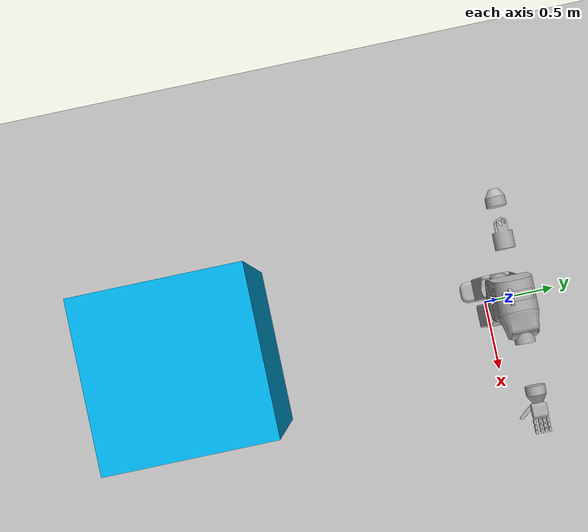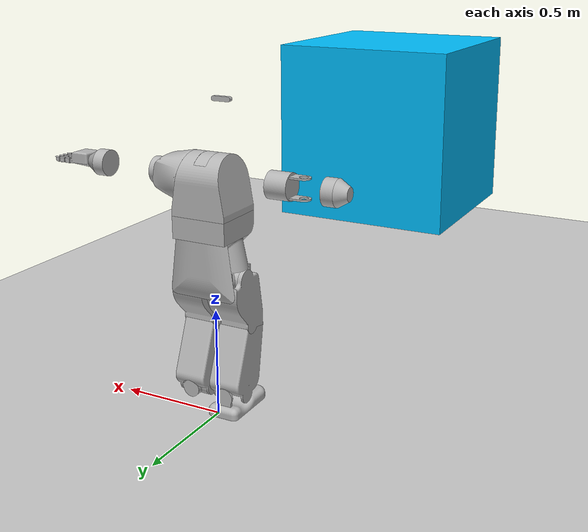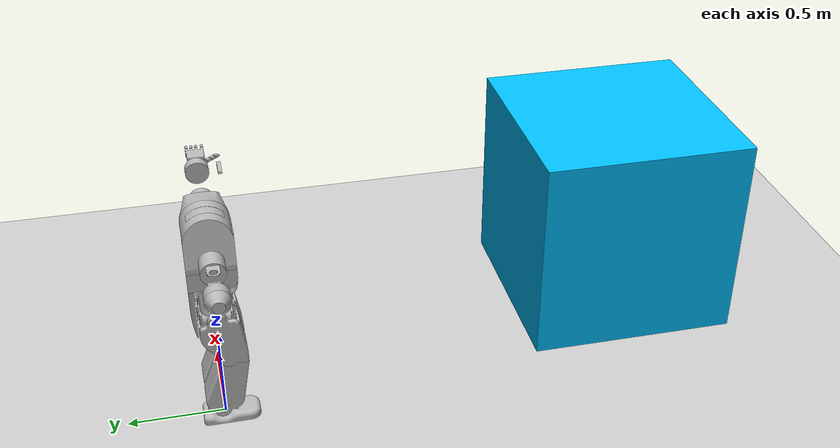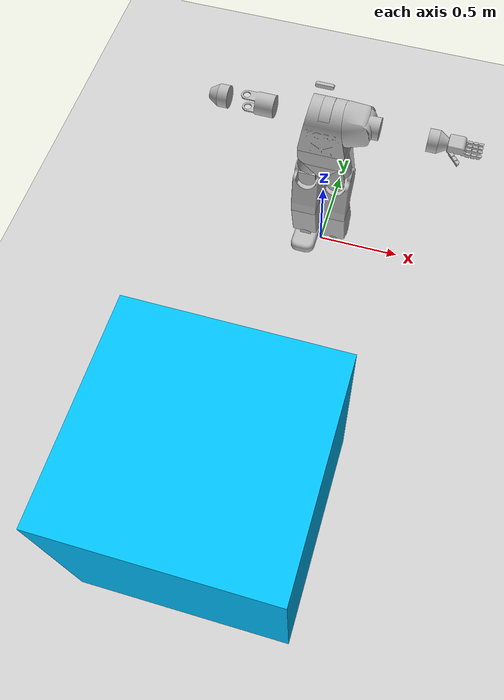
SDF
<?xml version="1.0" ?>
<sdf version="1.9">
  <!-- We use a custom world for the robot so that the camera angle is launched correctly -->

  <world name="kora_world">

    <physics name="1ms" type="ignored">
        <max_step_size>0.001</max_step_size>
        <real_time_factor>1.0</real_time_factor>
    </physics>

        <plugin
        filename="ignition-gazebo-physics-system"
        name="ignition::gazebo::systems::Physics">
    </plugin>

    <plugin
        filename="ignition-gazebo-user-commands-system"
        name="ignition::gazebo::systems::UserCommands">
    </plugin>

    <plugin
        filename="ignition-gazebo-scene-broadcaster-system"
        name="ignition::gazebo::systems::SceneBroadcaster">
    </plugin>

    <plugin
      filename="libignition-gazebo-sensors-system.so"
      name="ignition::gazebo::systems::Sensors">
      <!-- ogre2 not working with just the MESA_GL_VERSION_OVERRIDE=3.3 trick -->
      <render_engine>ogre</render_engine>
    </plugin>
  <gui>

      <fullscreen>0</fullscreen>
      <camera name='Camera'>
        <pose>10 -2 -2 0 0 0</pose>
      </camera>
    </gui>

    <light type="directional" name="sun">
        <cast_shadows>true</cast_shadows>
        <pose>0 0 10 0 0 0</pose>
        <diffuse>0.8 0.8 0.8 1</diffuse>
        <specular>0.2 0.2 0.2 1</specular>
        <attenuation>
            <range>1000</range>
            <constant>0.9</constant>
            <linear>0.01</linear>
            <quadratic>0.001</quadratic>
        </attenuation>
        <direction>-0.5 0.1 -0.9</direction>
    </light>

    <scene>
        <sky/>
    </scene>

    <model name="ground_plane">
        <static>true</static>
        <link name="link">
            <collision name="collision">
            <geometry>
                <plane>
                  <normal>0 0 1</normal>
                </plane>
            </geometry>
            </collision>
            <visual name="visual">
            <geometry>
                <plane>
                <normal>0 0 1</normal>
                <size>100 100</size>
                </plane>
            </geometry>
            <material>
                <ambient>0.8 0.8 0.8 1</ambient>
                <diffuse>0.8 0.8 0.8 1</diffuse>
                <specular>0.8 0.8 0.8 1</specular>
            </material>
            </visual>
        </link>
    </model>

    <model name="box">
      <static>true</static>
      <pose>0 -2 1 0 0 0</pose>
      <link name="box_link">
        <inertial>
          <inertia>
            <ixx>1</ixx>
            <ixy>0</ixy>
            <ixz>0</ixz>
            <iyy>1</iyy>
            <iyz>0</iyz>
            <izz>1</izz>
          </inertia>
          <mass>1.0</mass>
        </inertial>
        <collision name="box_collision">
          <geometry>
            <box>
              <size>1 1 1</size>
            </box>
          </geometry>
        </collision>

        <visual name="box_visual">
          <geometry>
            <box>
              <size>1 1 1</size>
            </box>
          </geometry>
          <material>
            <ambient>0 .75 1 1</ambient>
            <diffuse>0 .75 1 1</diffuse>
            <specular>0 .75 1 1</specular>
          </material>
        </visual>
      </link>
    </model>

    <gravity>0 0 -9.81</gravity>

    <include>
      <static>true</static>
      <name>kora</name>
      <pose>0 0 .85 0 0 0</pose>
      <uri>file:///home/sunset/sunset_ws/src/kora/src/kora_desc/kora.sdf</uri>
    </include>

  </world>
</sdf>

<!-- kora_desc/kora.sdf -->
<sdf version="1.9">

<!-- Built using SDF Generator: https://github.com/Miimiikiu/kora_tools.git -->
<!-- Editing this SDF file by hand is not recommended. -->

      <!-- ogre2 not working with just the MESA_GL_VERSION_OVERRIDE=3.3 trick -->

    <model name="kora" canonical_link='torso_lower'>
      <static>true</static>
      <plugin filename="libignition-gazebo-joint-state-publisher-system.so" name="ignition::gazebo::systems::JointStatePublisher"/>

      <link name="torso_lower">
        <pose relative_to='__model__'>0.0 0.0 0.0 0.0 0.0 0.0</pose>
        <self_collide>false</self_collide>
        <visual name='visual_torso_lower'>
          <geometry>
            <mesh>
              <uri>/home/sunset/sunset_ws/src/kora/src/kora_desc/visuals/OBJ/torso_lower.obj</uri>
              <scale>1 1 1</scale>
            </mesh>
          </geometry>
        </visual>
        <material name="None"/>
        <color rgba="${None}"/>
        <collision name='collision_torso_lower'>
          <geometry>
            <mesh>
              <uri>/home/sunset/sunset_ws/src/kora/src/kora_desc/collisions/Binary_STL/torso_lower_collision.stl</uri>
              <scale>0.001 0.001 0.001</scale>
            </mesh>
          </geometry>
        </collision>
        <inertial> <!--inertial properties of the link mass, inertia matix-->
          <mass>1.0</mass>
          <inertia>
            <ixx>0.00433778921</ixx>
            <ixy>-9.08698218e-06</ixy>
            <ixz>6.015618019999999e-06</ixz>
            <iyy>0.00327528256</iyy>
            <iyz>0.0008259445780000001</iyz>
            <izz>0.00448404768</izz>
          </inertia>
        </inertial>
      </link>

      <link name="torso_mid">
        <pose relative_to='torso_lower'>0.0 0.0 0.0 0.0 0.0 0.0</pose>
        <self_collide>false</self_collide>
        <visual name='visual_torso_mid'>
          <geometry>
            <mesh>
              <uri>/home/sunset/sunset_ws/src/kora/src/kora_desc/visuals/OBJ/torso_mid.obj</uri>
              <scale>1 1 1</scale>
            </mesh>
          </geometry>
        </visual>
        <material name="None"/>
        <color rgba="${None}"/>
        <collision name='collision_torso_mid'>
          <geometry>
            <mesh>
              <uri>/home/sunset/sunset_ws/src/kora/src/kora_desc/collisions/Binary_STL/torso_mid_collision.stl</uri>
              <scale>0.001 0.001 0.001</scale>
            </mesh>
          </geometry>
        </collision>
        <inertial> <!--inertial properties of the link mass, inertia matix-->
          <mass>1.0</mass>
          <inertia>
            <ixx>0.00349680885</ixx>
            <ixy>-7.22360891e-21</ixy>
            <ixz>-1.64695615e-19</ixz>
            <iyy>0.00401549693</iyy>
            <iyz>5.5563248699999994e-06</iyz>
            <izz>0.00647631994</izz>
          </inertia>
        </inertial>
      </link>

      <link name="torso_upper">
        <pose relative_to='torso_mid'>0.0 0.0 0.1 0.0 0.0 0.0</pose>
        <self_collide>false</self_collide>
        <visual name='visual_torso_upper'>
          <geometry>
            <mesh>
              <uri>/home/sunset/sunset_ws/src/kora/src/kora_desc/visuals/OBJ/torso_upper.obj</uri>
              <scale>1 1 1</scale>
            </mesh>
          </geometry>
        </visual>
        <material name="None"/>
        <color rgba="${None}"/>
        <collision name='collision_torso_upper'>
          <geometry>
            <mesh>
              <uri>/home/sunset/sunset_ws/src/kora/src/kora_desc/collisions/Binary_STL/torso_upper_collision.stl</uri>
              <scale>0.001 0.001 0.001</scale>
            </mesh>
          </geometry>
        </collision>
        <inertial> <!--inertial properties of the link mass, inertia matix-->
          <mass>1.0</mass>
          <inertia>
            <ixx>0.011925590199999999</ixx>
            <ixy>-1.34254727e-06</ixy>
            <ixz>3.94209561e-06</ixz>
            <iyy>0.0120148783</iyy>
            <iyz>2.94102999e-06</iyz>
            <izz>0.0116527628</izz>
          </inertia>
        </inertial>
      </link>

      <link name="backpack">
        <pose relative_to='torso_upper'>0.0 0.12 0.1 0.0 0.0 0.0</pose>
        <self_collide>false</self_collide>
        <visual name='visual_backpack'>
          <geometry>
            <mesh>
              <uri>/home/sunset/sunset_ws/src/kora/src/kora_desc/visuals/OBJ/backpack.obj</uri>
              <scale>1 1 1</scale>
            </mesh>
          </geometry>
        </visual>
        <material name="None"/>
        <color rgba="${None}"/>
        <collision name='collision_backpack'>
          <geometry>
            <mesh>
              <uri>/home/sunset/sunset_ws/src/kora/src/kora_desc/collisions/Binary_STL/backpack_collision.stl</uri>
              <scale>0.001 0.001 0.001</scale>
            </mesh>
          </geometry>
        </collision>
        <inertial> <!--inertial properties of the link mass, inertia matix-->
          <mass>1.0</mass>
          <inertia>
            <ixx>0.0222803238</ixx>
            <ixy>-1.3425329400000001e-06</ixy>
            <ixz>-8.81825398e-07</ixz>
            <iyy>0.027701203000000004</iyy>
            <iyz>0.0009489099969999999</iyz>
            <izz>0.0105777581</izz>
          </inertia>
        </inertial>
      </link>

      <link name="neck">
        <pose relative_to='torso_upper'>0.0 0.0 0.25186 0.0 0.0 0.0</pose>
        <self_collide>false</self_collide>
        <visual name='visual_neck'>
          <geometry>
            <mesh>
              <uri>/home/sunset/sunset_ws/src/kora/src/kora_desc/visuals/OBJ/neck.obj</uri>
              <scale>1 1 1</scale>
            </mesh>
          </geometry>
        </visual>
        <material name="None"/>
        <color rgba="${None}"/>
        <collision name='collision_neck'>
          <geometry>
            <mesh>
              <uri>/home/sunset/sunset_ws/src/kora/src/kora_desc/collisions/Binary_STL/neck_collision.stl</uri>
              <scale>0.001 0.001 0.001</scale>
            </mesh>
          </geometry>
        </collision>
        <inertial> <!--inertial properties of the link mass, inertia matix-->
          <mass>1.0</mass>
          <inertia>
            <ixx>6.1003576999999995e-06</ixx>
            <ixy>-4.877739510000001e-13</ixy>
            <ixz>7.82291408e-14</ixz>
            <iyy>6.10035843e-06</iyy>
            <iyz>3.85604688e-14</iyz>
            <izz>1.0733481400000001e-05</izz>
          </inertia>
        </inertial>
      </link>

      <link name="neck_connection">
        <pose relative_to='torso_upper'>0.0 0.0 0.22609 0.0 0.0 0.0</pose>
        <self_collide>false</self_collide>
        <visual name='visual_neck_connection'>
          <geometry>
            <mesh>
              <uri>/home/sunset/sunset_ws/src/kora/src/kora_desc/visuals/OBJ/neck_connection.obj</uri>
              <scale>1 1 1</scale>
            </mesh>
          </geometry>
        </visual>
        <material name="None"/>
        <color rgba="${None}"/>
        <collision name='collision_neck_connection'>
          <geometry>
            <mesh>
              <uri>/home/sunset/sunset_ws/src/kora/src/kora_desc/collisions/Binary_STL/neck_connection_collision.stl</uri>
              <scale>0.001 0.001 0.001</scale>
            </mesh>
          </geometry>
        </collision>
        <inertial> <!--inertial properties of the link mass, inertia matix-->
          <mass>1.0</mass>
          <inertia>
            <ixx>5.5356104900000006e-05</ixx>
            <ixy>1.80622642e-22</ixy>
            <ixz>-1.22648384e-21</ixz>
            <iyy>1.26475226e-05</iyy>
            <iyz>-2.4919761099999997e-22</iyz>
            <izz>6.1013188900000006e-05</izz>
          </inertia>
        </inertial>
      </link>

      <link name="head">
        <pose relative_to='neck'>0.0 0.0 0.02618000000000001 0.0 0.0 0.0</pose>
        <self_collide>false</self_collide>
        <visual name='visual_head'>
          <geometry>
            <mesh>
              <uri>/home/sunset/sunset_ws/src/kora/src/kora_desc/visuals/OBJ/head.obj</uri>
              <scale>1 1 1</scale>
            </mesh>
          </geometry>
        </visual>
        <material name="None"/>
        <color rgba="${None}"/>
        <collision name='collision_head'>
          <geometry>
            <mesh>
              <uri>/home/sunset/sunset_ws/src/kora/src/kora_desc/collisions/Binary_STL/head_collision.stl</uri>
              <scale>0.001 0.001 0.001</scale>
            </mesh>
          </geometry>
        </collision>
        <inertial> <!--inertial properties of the link mass, inertia matix-->
          <mass>1.0</mass>
          <inertia>
            <ixx>0.00875499152</ixx>
            <ixy>-1.10031686e-07</ixy>
            <ixz>1.05895885e-07</ixz>
            <iyy>0.0100606856</iyy>
            <iyz>0.000146878504</iyz>
            <izz>0.0102866286</izz>
          </inertia>
        </inertial>
      </link>

      <link name="realsense">
        <pose relative_to='head'>0.0 0.0 0.0 0.0 0.0 0.0</pose>
        <self_collide>false</self_collide>
        <visual name='visual_realsense'>
          <geometry>
            <mesh>
              <uri>/home/sunset/sunset_ws/src/kora/src/kora_desc/visuals/OBJ/realsense.obj</uri>
              <scale>1 1 1</scale>
            </mesh>
          </geometry>
        </visual>
        <material name="None"/>
        <color rgba="${None}"/>
        <collision name='collision_realsense'>
          <geometry>
            <mesh>
              <uri>/home/sunset/sunset_ws/src/kora/src/kora_desc/collisions/Binary_STL/realsense_collision.stl</uri>
              <scale>0.001 0.001 0.001</scale>
            </mesh>
          </geometry>
        </collision>
        <inertial> <!--inertial properties of the link mass, inertia matix-->
          <mass>1.0</mass>
          <inertia>
            <ixx>2.57383108e-07</ixx>
            <ixy>2.38709849e-21</ixy>
            <ixz>-2.03483329e-21</ixz>
            <iyy>2.70705869e-06</iyy>
            <iyz>-2.3293406e-19</iyz>
            <izz>2.67601348e-06</izz>
          </inertia>
        </inertial>
<!-- realsense_sensor -->

        <sensor type="camera" name="camera_sensor_color">
          <pose relative_to='realsense'>0.0 0.0 0.0 0.0 0.0 4.7124</pose>

          <!-- Set always_on only sensor, not on plugin -->
          <always_on>0</always_on>

          <!-- Set update_rate only sensor, not on plugin -->
          <update_rate>5</update_rate>

          <camera name="camera_color">

          </camera>

          <!-- Use camera, not camera_triggered -->
          <plugin name="plugin_name" filename="libgazebo_ros_camera.so">
            <ros>
              <namespace>camera_color</namespace>
              <remapping>image_raw:=img</remapping>
              <remapping>camera_info:=info</remapping>
            </ros>

            <!-- Set camera name. If empty, defaults to sensor name (i.e. "sensor_name") -->
            <camera_name>camera_color</camera_name>

            <!-- Set TF frame name. If empty, defaults to link name (i.e. "link_name") -->
            <frame_name>realsense</frame_name>

            <hack_baseline>0.07</hack_baseline>

            <!-- No need to repeat distortion parameters or to set autoDistortion -->
          </plugin>
        </sensor>

        <sensor type="depth" name="depth_sensor">

          <!-- Set always_on only sensor, not on plugin -->
          <always_on>0</always_on>

          <!-- Set update_rate only sensor, not on plugin -->
          <update_rate>1</update_rate>

          <camera name="depth_camera">

          </camera>

          <plugin name="plugin_name_depth" filename="libgazebo_ros_camera.so">
            <ros>
              <namespace>depth_camera</namespace>
              <remapping>depth_camera/image_raw:=depth_camera/custom_image</remapping>
              <remapping>depth_camera/image_depth:=depth_camera/custom_image_depth</remapping>
              <remapping>depth_camera/camera_info:=depth_camera/custom_info_raw</remapping>
              <remapping>depth_camera/camera_info_depth:=depth_camera/custom_info_depth</remapping>
              <remapping>depth_camera/points:=depth_camera/custom_points</remapping>
            </ros>

            <!-- Set camera name. If empty, defaults to sensor name (i.e. "sensor_name") -->
            <camera_name>depth_camera</camera_name>

            <!-- Set TF frame name. If empty, defaults to link name (i.e. "link_name") -->
            <frame_name>realsense</frame_name>

            <hack_baseline>0.07</hack_baseline>

            <!-- No need to repeat distortion parameters or to set autoDistortion -->

             <min_depth>0.001</min_depth>
          </plugin>
        </sensor>      </link>

      <link name="shoulder_bracket_dexter">
        <pose relative_to='torso_upper'>-0.10976 0.0 0.14829 0.0 0.165143 0.0</pose>
        <self_collide>false</self_collide>
        <visual name='visual_shoulder_bracket_dexter'>
          <geometry>
            <mesh>
              <uri>/home/sunset/sunset_ws/src/kora/src/kora_desc/visuals/OBJ/shoulder_bracket_dexter.obj</uri>
              <scale>1 1 1</scale>
            </mesh>
          </geometry>
        </visual>
        <material name="None"/>
        <color rgba="${None}"/>
        <collision name='collision_shoulder_bracket_dexter'>
          <geometry>
            <mesh>
              <uri>/home/sunset/sunset_ws/src/kora/src/kora_desc/collisions/Binary_STL/shoulder_bracket_dexter_collision.stl</uri>
              <scale>0.001 0.001 0.001</scale>
            </mesh>
          </geometry>
        </collision>
        <inertial> <!--inertial properties of the link mass, inertia matix-->
          <mass>1.0</mass>
          <inertia>
            <ixx>0.00144157404</ixx>
            <ixy>-4.4869663199999996e-08</ixy>
            <ixz>6.311151650000001e-05</ixz>
            <iyy>0.0007949240900000001</iyy>
            <iyz>-3.69869358e-08</iyz>
            <izz>0.00103050401</izz>
          </inertia>
        </inertial>
      </link>

      <link name="shoulder_link_dexter">
        <pose relative_to='shoulder_bracket_dexter'>-0.076 0.0 0.0 0.0 -0.165143 0.0</pose>
        <self_collide>false</self_collide>
        <visual name='visual_shoulder_link_dexter'>
          <geometry>
            <mesh>
              <uri>/home/sunset/sunset_ws/src/kora/src/kora_desc/visuals/OBJ/shoulder_link_dexter.obj</uri>
              <scale>1 1 1</scale>
            </mesh>
          </geometry>
        </visual>
        <material name="None"/>
        <color rgba="${None}"/>
        <collision name='collision_shoulder_link_dexter'>
          <geometry>
            <mesh>
              <uri>/home/sunset/sunset_ws/src/kora/src/kora_desc/collisions/Binary_STL/shoulder_link_dexter_collision.stl</uri>
              <scale>0.001 0.001 0.001</scale>
            </mesh>
          </geometry>
        </collision>
        <inertial> <!--inertial properties of the link mass, inertia matix-->
          <mass>1.0</mass>
          <inertia>
            <ixx>0.00089769986</ixx>
            <ixy>-5.50831472e-09</ixy>
            <ixz>5.28057508e-06</ixz>
            <iyy>0.000936444764</iyy>
            <iyz>-1.70906237e-08</iyz>
            <izz>0.00113433115</izz>
          </inertia>
        </inertial>
      </link>

      <link name="arm_upper_dexter">
        <pose relative_to='shoulder_link_dexter'>-0.102 0.0 0.0 0.0 0.0 0.0</pose>
        <self_collide>false</self_collide>
        <visual name='visual_arm_upper_dexter'>
          <geometry>
            <mesh>
              <uri>/home/sunset/sunset_ws/src/kora/src/kora_desc/visuals/OBJ/arm_upper_dexter.obj</uri>
              <scale>1 1 1</scale>
            </mesh>
          </geometry>
        </visual>
        <material name="None"/>
        <color rgba="${None}"/>
        <collision name='collision_arm_upper_dexter'>
          <geometry>
            <mesh>
              <uri>/home/sunset/sunset_ws/src/kora/src/kora_desc/collisions/Binary_STL/arm_upper_dexter_collision.stl</uri>
              <scale>0.001 0.001 0.001</scale>
            </mesh>
          </geometry>
        </collision>
        <inertial> <!--inertial properties of the link mass, inertia matix-->
          <mass>1.0</mass>
          <inertia>
            <ixx>0.000233307947</ixx>
            <ixy>-8.29006429e-21</ixy>
            <ixz>8.64003529e-20</ixz>
            <iyy>0.00027190574799999996</iyy>
            <iyz>2.06795153e-21</iyz>
            <izz>0.000250122095</izz>
          </inertia>
        </inertial>
      </link>

      <link name="forearm_dexter">
        <pose relative_to='arm_upper_dexter'>-0.155 0.0 0.0 0.0 0.0 0.0</pose>
        <self_collide>false</self_collide>
        <visual name='visual_forearm_dexter'>
          <geometry>
            <mesh>
              <uri>/home/sunset/sunset_ws/src/kora/src/kora_desc/visuals/OBJ/forearm_dexter.obj</uri>
              <scale>1 1 1</scale>
            </mesh>
          </geometry>
        </visual>
        <material name="None"/>
        <color rgba="${None}"/>
        <collision name='collision_forearm_dexter'>
          <geometry>
            <mesh>
              <uri>/home/sunset/sunset_ws/src/kora/src/kora_desc/collisions/Binary_STL/forearm_dexter_collision.stl</uri>
              <scale>0.001 0.001 0.001</scale>
            </mesh>
          </geometry>
        </collision>
        <inertial> <!--inertial properties of the link mass, inertia matix-->
          <mass>1.0</mass>
          <inertia>
            <ixx>0.000530099429</ixx>
            <ixy>9.17050572e-06</ixy>
            <ixz>-7.13339277e-09</ixz>
            <iyy>0.0009883305099999999</iyy>
            <iyz>2.2009097e-09</iyz>
            <izz>0.0009665236070000001</izz>
          </inertia>
        </inertial>
      </link>

      <link name="wrist_rot_link_dexter">
        <pose relative_to='forearm_dexter'>-0.1 0.0 0.0 0.0 0.0 0.0</pose>
        <self_collide>false</self_collide>
        <visual name='visual_wrist_rot_link_dexter'>
          <geometry>
            <mesh>
              <uri>/home/sunset/sunset_ws/src/kora/src/kora_desc/visuals/OBJ/wrist_rot_link_dexter.obj</uri>
              <scale>1 1 1</scale>
            </mesh>
          </geometry>
        </visual>
        <material name="None"/>
        <color rgba="${None}"/>
        <collision name='collision_wrist_rot_link_dexter'>
          <geometry>
            <mesh>
              <uri>/home/sunset/sunset_ws/src/kora/src/kora_desc/collisions/Binary_STL/wrist_rot_link_dexter_collision.stl</uri>
              <scale>0.001 0.001 0.001</scale>
            </mesh>
          </geometry>
        </collision>
        <inertial> <!--inertial properties of the link mass, inertia matix-->
          <mass>1.0</mass>
          <inertia>
            <ixx>0.000111629122</ixx>
            <ixy>-8.30961813e-21</ixy>
            <ixz>4.9961709e-22</ixz>
            <iyy>7.147135539999999e-05</iyy>
            <iyz>4.91138489e-22</iyz>
            <izz>7.14714437e-05</izz>
          </inertia>
        </inertial>
      </link>

      <link name="wrist_ball_dexter">
        <pose relative_to='wrist_rot_link_dexter'>-0.055 0.0 0.0 0.0 0.0 0.0</pose>
        <self_collide>false</self_collide>
        <visual name='visual_wrist_ball_dexter'>
          <geometry>
            <mesh>
              <uri>/home/sunset/sunset_ws/src/kora/src/kora_desc/visuals/OBJ/wrist_ball_dexter.obj</uri>
              <scale>1 1 1</scale>
            </mesh>
          </geometry>
        </visual>
        <material name="None"/>
        <color rgba="${None}"/>
        <collision name='collision_wrist_ball_dexter'>
          <geometry>
            <mesh>
              <uri>/home/sunset/sunset_ws/src/kora/src/kora_desc/collisions/Binary_STL/wrist_ball_dexter_collision.stl</uri>
              <scale>0.001 0.001 0.001</scale>
            </mesh>
          </geometry>
        </collision>
        <inertial> <!--inertial properties of the link mass, inertia matix-->
          <mass>1.0</mass>
          <inertia>
            <ixx>3.9329131600000004e-05</ixx>
            <ixy>1.44590198e-21</ixy>
            <ixz>6.45308082e-12</ixz>
            <iyy>2.5775806600000004e-05</iyy>
            <iyz>-4.01938635e-22</iyz>
            <izz>2.5775695700000002e-05</izz>
          </inertia>
        </inertial>
      </link>

      <link name="hand_dexter">
        <pose relative_to='wrist_ball_dexter'>-0.05 0.0 0.0 0.0 0.0 0.0</pose>
        <self_collide>false</self_collide>
        <visual name='visual_hand_dexter'>
          <geometry>
            <mesh>
              <uri>/home/sunset/sunset_ws/src/kora/src/kora_desc/visuals/OBJ/hand_dexter.obj</uri>
              <scale>1 1 1</scale>
            </mesh>
          </geometry>
        </visual>
        <material name="None"/>
        <color rgba="${None}"/>
        <collision name='collision_hand_dexter'>
          <geometry>
            <mesh>
              <uri>/home/sunset/sunset_ws/src/kora/src/kora_desc/collisions/Binary_STL/hand_dexter_collision.stl</uri>
              <scale>0.001 0.001 0.001</scale>
            </mesh>
          </geometry>
        </collision>
        <inertial> <!--inertial properties of the link mass, inertia matix-->
          <mass>1.0</mass>
          <inertia>
            <ixx>7.47972951e-05</ixx>
            <ixy>4.95234034e-06</ixy>
            <ixz>-8.68417156e-06</ixz>
            <iyy>0.000135524538</iyy>
            <iyz>-2.0051651e-06</iyz>
            <izz>0.00018104788299999998</izz>
          </inertia>
        </inertial>
      </link>

      <link name="shoulder_bracket_sinister">
        <pose relative_to='torso_upper'>0.10976 0.0 0.14829 0.0 -0.165143 0.0</pose>
        <self_collide>false</self_collide>
        <visual name='visual_shoulder_bracket_sinister'>
          <geometry>
            <mesh>
              <uri>/home/sunset/sunset_ws/src/kora/src/kora_desc/visuals/OBJ/shoulder_bracket_sinister.obj</uri>
              <scale>1 1 1</scale>
            </mesh>
          </geometry>
        </visual>
        <material name="None"/>
        <color rgba="${None}"/>
        <collision name='collision_shoulder_bracket_sinister'>
          <geometry>
            <mesh>
              <uri>/home/sunset/sunset_ws/src/kora/src/kora_desc/collisions/Binary_STL/shoulder_bracket_sinister_collision.stl</uri>
              <scale>0.001 0.001 0.001</scale>
            </mesh>
          </geometry>
        </collision>
        <inertial> <!--inertial properties of the link mass, inertia matix-->
          <mass>1.0</mass>
          <inertia>
            <ixx>0.00144157404</ixx>
            <ixy>-4.4869663199999996e-08</ixy>
            <ixz>-6.311151650000001e-05</ixz>
            <iyy>0.0007949240900000001</iyy>
            <iyz>3.69869358e-08</iyz>
            <izz>0.00103050401</izz>
          </inertia>
        </inertial>
      </link>

      <link name="shoulder_link_sinister">
        <pose relative_to='shoulder_bracket_sinister'>0.076 0.0 0.0 0.0 0.165143 0.0</pose>
        <self_collide>false</self_collide>
        <visual name='visual_shoulder_link_sinister'>
          <geometry>
            <mesh>
              <uri>/home/sunset/sunset_ws/src/kora/src/kora_desc/visuals/OBJ/shoulder_link_sinister.obj</uri>
              <scale>1 1 1</scale>
            </mesh>
          </geometry>
        </visual>
        <material name="None"/>
        <color rgba="${None}"/>
        <collision name='collision_shoulder_link_sinister'>
          <geometry>
            <mesh>
              <uri>/home/sunset/sunset_ws/src/kora/src/kora_desc/collisions/Binary_STL/shoulder_link_sinister_collision.stl</uri>
              <scale>0.001 0.001 0.001</scale>
            </mesh>
          </geometry>
        </collision>
        <inertial> <!--inertial properties of the link mass, inertia matix-->
          <mass>1.0</mass>
          <inertia>
            <ixx>0.00089769986</ixx>
            <ixy>-5.50831472e-09</ixy>
            <ixz>-5.28057508e-06</ixz>
            <iyy>0.000936444764</iyy>
            <iyz>1.70906237e-08</iyz>
            <izz>0.00113433115</izz>
          </inertia>
        </inertial>
      </link>

      <link name="arm_upper_sinister">
        <pose relative_to='shoulder_link_sinister'>0.102 0.0 0.0 0.0 0.0 0.0</pose>
        <self_collide>false</self_collide>
        <visual name='visual_arm_upper_sinister'>
          <geometry>
            <mesh>
              <uri>/home/sunset/sunset_ws/src/kora/src/kora_desc/visuals/OBJ/arm_upper_sinister.obj</uri>
              <scale>1 1 1</scale>
            </mesh>
          </geometry>
        </visual>
        <material name="None"/>
        <color rgba="${None}"/>
        <collision name='collision_arm_upper_sinister'>
          <geometry>
            <mesh>
              <uri>/home/sunset/sunset_ws/src/kora/src/kora_desc/collisions/Binary_STL/arm_upper_sinister_collision.stl</uri>
              <scale>0.001 0.001 0.001</scale>
            </mesh>
          </geometry>
        </collision>
        <inertial> <!--inertial properties of the link mass, inertia matix-->
          <mass>1.0</mass>
          <inertia>
            <ixx>0.000233307947</ixx>
            <ixy>9.61355327e-21</ixy>
            <ixz>6.691495609999999e-21</ixz>
            <iyy>0.00027190574799999996</iyy>
            <iyz>-2.23338765e-21</iyz>
            <izz>0.000250122095</izz>
          </inertia>
        </inertial>
      </link>

      <link name="forearm_sinister">
        <pose relative_to='arm_upper_sinister'>0.155 0.0 0.0 0.0 0.0 0.0</pose>
        <self_collide>false</self_collide>
        <visual name='visual_forearm_sinister'>
          <geometry>
            <mesh>
              <uri>/home/sunset/sunset_ws/src/kora/src/kora_desc/visuals/OBJ/forearm_sinister.obj</uri>
              <scale>1 1 1</scale>
            </mesh>
          </geometry>
        </visual>
        <material name="None"/>
        <color rgba="${None}"/>
        <collision name='collision_forearm_sinister'>
          <geometry>
            <mesh>
              <uri>/home/sunset/sunset_ws/src/kora/src/kora_desc/collisions/Binary_STL/forearm_sinister_collision.stl</uri>
              <scale>0.001 0.001 0.001</scale>
            </mesh>
          </geometry>
        </collision>
        <inertial> <!--inertial properties of the link mass, inertia matix-->
          <mass>1.0</mass>
          <inertia>
            <ixx>0.000530099429</ixx>
            <ixy>9.17050572e-06</ixy>
            <ixz>7.13339277e-09</ixz>
            <iyy>0.0009883305099999999</iyy>
            <iyz>-2.2009097e-09</iyz>
            <izz>0.0009665236070000001</izz>
          </inertia>
        </inertial>
      </link>

      <link name="wrist_rot_link_sinister">
        <pose relative_to='forearm_sinister'>0.1 0.0 0.0 0.0 0.0 0.0</pose>
        <self_collide>false</self_collide>
        <visual name='visual_wrist_rot_link_sinister'>
          <geometry>
            <mesh>
              <uri>/home/sunset/sunset_ws/src/kora/src/kora_desc/visuals/OBJ/wrist_rot_link_sinister.obj</uri>
              <scale>1 1 1</scale>
            </mesh>
          </geometry>
        </visual>
        <material name="None"/>
        <color rgba="${None}"/>
        <collision name='collision_wrist_rot_link_sinister'>
          <geometry>
            <mesh>
              <uri>/home/sunset/sunset_ws/src/kora/src/kora_desc/collisions/Binary_STL/wrist_rot_link_sinister_collision.stl</uri>
              <scale>0.001 0.001 0.001</scale>
            </mesh>
          </geometry>
        </collision>
        <inertial> <!--inertial properties of the link mass, inertia matix-->
          <mass>1.0</mass>
          <inertia>
            <ixx>0.000111629122</ixx>
            <ixy>-8.30961813e-21</ixy>
            <ixz>-4.9961709e-22</ixz>
            <iyy>7.147135539999999e-05</iyy>
            <iyz>-4.91138489e-22</iyz>
            <izz>7.14714437e-05</izz>
          </inertia>
        </inertial>
      </link>

      <link name="wrist_ball_sinister">
        <pose relative_to='wrist_rot_link_sinister'>0.055 0.0 0.0 0.0 0.0 0.0</pose>
        <self_collide>false</self_collide>
        <visual name='visual_wrist_ball_sinister'>
          <geometry>
            <mesh>
              <uri>/home/sunset/sunset_ws/src/kora/src/kora_desc/visuals/OBJ/wrist_ball_sinister.obj</uri>
              <scale>1 1 1</scale>
            </mesh>
          </geometry>
        </visual>
        <material name="None"/>
        <color rgba="${None}"/>
        <collision name='collision_wrist_ball_sinister'>
          <geometry>
            <mesh>
              <uri>/home/sunset/sunset_ws/src/kora/src/kora_desc/collisions/Binary_STL/wrist_ball_sinister_collision.stl</uri>
              <scale>0.001 0.001 0.001</scale>
            </mesh>
          </geometry>
        </collision>
        <inertial> <!--inertial properties of the link mass, inertia matix-->
          <mass>1.0</mass>
          <inertia>
            <ixx>3.9329131600000004e-05</ixx>
            <ixy>1.44590198e-21</ixy>
            <ixz>-6.45308082e-12</ixz>
            <iyy>2.5775806600000004e-05</iyy>
            <iyz>4.01938635e-22</iyz>
            <izz>2.5775695700000002e-05</izz>
          </inertia>
        </inertial>
      </link>

      <link name="hand_sinister">
        <pose relative_to='wrist_ball_sinister'>0.05 0.0 0.0 0.0 0.0 0.0</pose>
        <self_collide>false</self_collide>
        <visual name='visual_hand_sinister'>
          <geometry>
            <mesh>
              <uri>/home/sunset/sunset_ws/src/kora/src/kora_desc/visuals/OBJ/hand_sinister.obj</uri>
              <scale>1 1 1</scale>
            </mesh>
          </geometry>
        </visual>
        <material name="None"/>
        <color rgba="${None}"/>
        <collision name='collision_hand_sinister'>
          <geometry>
            <mesh>
              <uri>/home/sunset/sunset_ws/src/kora/src/kora_desc/collisions/Binary_STL/hand_sinister_collision.stl</uri>
              <scale>0.001 0.001 0.001</scale>
            </mesh>
          </geometry>
        </collision>
        <inertial> <!--inertial properties of the link mass, inertia matix-->
          <mass>1.0</mass>
          <inertia>
            <ixx>7.479572059999999e-05</ixx>
            <ixy>-4.95856551e-06</ixy>
            <ixz>8.68406372e-06</ixz>
            <iyy>0.000135524802</iyy>
            <iyz>-2.00905246e-06</iyz>
            <izz>0.00018104611</izz>
          </inertia>
        </inertial>
      </link>

      <link name="hip_bracket_dexter">
        <pose relative_to='torso_lower'>-0.074255 0.0 -0.05657 0.0 -0.785398 0.0</pose>
        <self_collide>false</self_collide>
        <visual name='visual_hip_bracket_dexter'>
          <geometry>
            <mesh>
              <uri>/home/sunset/sunset_ws/src/kora/src/kora_desc/visuals/OBJ/hip_bracket_dexter.obj</uri>
              <scale>1 1 1</scale>
            </mesh>
          </geometry>
        </visual>
        <material name="None"/>
        <color rgba="${None}"/>
        <collision name='collision_hip_bracket_dexter'>
          <geometry>
            <mesh>
              <uri>/home/sunset/sunset_ws/src/kora/src/kora_desc/collisions/Binary_STL/hip_bracket_dexter_collision.stl</uri>
              <scale>0.001 0.001 0.001</scale>
            </mesh>
          </geometry>
        </collision>
        <inertial> <!--inertial properties of the link mass, inertia matix-->
          <mass>1.0</mass>
          <inertia>
            <ixx>0.00057980089</ixx>
            <ixy>3.03514081e-09</ixy>
            <ixz>-6.04022308e-05</ixz>
            <iyy>0.00042406632000000004</iyy>
            <iyz>-1.91982782e-08</iyz>
            <izz>0.00044408035399999996</izz>
          </inertia>
        </inertial>
      </link>

      <link name="hip_motor_link_dexter">
        <pose relative_to='hip_bracket_dexter'>-0.09714 0.0 -0.08195 0.0 0.785398 0.0</pose>
        <self_collide>false</self_collide>
        <visual name='visual_hip_motor_link_dexter'>
          <geometry>
            <mesh>
              <uri>/home/sunset/sunset_ws/src/kora/src/kora_desc/visuals/OBJ/hip_motor_link_dexter.obj</uri>
              <scale>1 1 1</scale>
            </mesh>
          </geometry>
        </visual>
        <material name="None"/>
        <color rgba="${None}"/>
        <collision name='collision_hip_motor_link_dexter'>
          <geometry>
            <mesh>
              <uri>/home/sunset/sunset_ws/src/kora/src/kora_desc/collisions/Binary_STL/hip_motor_link_dexter_collision.stl</uri>
              <scale>0.001 0.001 0.001</scale>
            </mesh>
          </geometry>
        </collision>
        <inertial> <!--inertial properties of the link mass, inertia matix-->
          <mass>1.0</mass>
          <inertia>
            <ixx>0.000287783964</ixx>
            <ixy>-4.0395808699999995e-16</ixy>
            <ixz>3.2604867599999996e-10</ixz>
            <iyy>0.00023118299</iyy>
            <iyz>4.52423297e-10</iyz>
            <izz>0.00033092146</izz>
          </inertia>
        </inertial>
      </link>

      <link name="thigh_dexter">
        <pose relative_to='hip_motor_link_dexter'>0.0 0.0 0.0 0.0 0.0 0.0</pose>
        <self_collide>false</self_collide>
        <visual name='visual_thigh_dexter'>
          <geometry>
            <mesh>
              <uri>/home/sunset/sunset_ws/src/kora/src/kora_desc/visuals/OBJ/thigh_dexter.obj</uri>
              <scale>1 1 1</scale>
            </mesh>
          </geometry>
        </visual>
        <material name="None"/>
        <color rgba="${None}"/>
        <collision name='collision_thigh_dexter'>
          <geometry>
            <mesh>
              <uri>/home/sunset/sunset_ws/src/kora/src/kora_desc/collisions/Binary_STL/thigh_dexter_collision.stl</uri>
              <scale>0.001 0.001 0.001</scale>
            </mesh>
          </geometry>
        </collision>
        <inertial> <!--inertial properties of the link mass, inertia matix-->
          <mass>1.0</mass>
          <inertia>
            <ixx>0.00318832262</ixx>
            <ixy>3.21252453e-05</ixy>
            <ixz>0.00012394708</ixz>
            <iyy>0.00276480145</iyy>
            <iyz>-0.000569440192</iyz>
            <izz>0.00248045855</izz>
          </inertia>
        </inertial>
      </link>

      <link name="calf_dexter">
        <pose relative_to='thigh_dexter'>-0.005 -0.0382 -0.21666 0.0 0.0 0.0</pose>
        <self_collide>false</self_collide>
        <visual name='visual_calf_dexter'>
          <geometry>
            <mesh>
              <uri>/home/sunset/sunset_ws/src/kora/src/kora_desc/visuals/OBJ/calf_dexter.obj</uri>
              <scale>1 1 1</scale>
            </mesh>
          </geometry>
        </visual>
        <material name="None"/>
        <color rgba="${None}"/>
        <collision name='collision_calf_dexter'>
          <geometry>
            <mesh>
              <uri>/home/sunset/sunset_ws/src/kora/src/kora_desc/collisions/Binary_STL/calf_dexter_collision.stl</uri>
              <scale>0.001 0.001 0.001</scale>
            </mesh>
          </geometry>
        </collision>
        <inertial> <!--inertial properties of the link mass, inertia matix-->
          <mass>1.0</mass>
          <inertia>
            <ixx>0.00558420881</ixx>
            <ixy>-7.885774e-10</ixy>
            <ixz>-5.42609033e-10</ixz>
            <iyy>0.00513737038</iyy>
            <iyz>0.000873086495</iyz>
            <izz>0.0030546704499999997</izz>
          </inertia>
        </inertial>
      </link>

      <link name="ankle_link_dexter">
        <pose relative_to='calf_dexter'>0.0 0.0547 -0.31021 0.0 0.0 0.0</pose>
        <self_collide>false</self_collide>
        <visual name='visual_ankle_link_dexter'>
          <geometry>
            <mesh>
              <uri>/home/sunset/sunset_ws/src/kora/src/kora_desc/visuals/OBJ/ankle_link_dexter.obj</uri>
              <scale>1 1 1</scale>
            </mesh>
          </geometry>
        </visual>
        <material name="None"/>
        <color rgba="${None}"/>
        <collision name='collision_ankle_link_dexter'>
          <geometry>
            <mesh>
              <uri>/home/sunset/sunset_ws/src/kora/src/kora_desc/collisions/Binary_STL/ankle_link_dexter_collision.stl</uri>
              <scale>0.001 0.001 0.001</scale>
            </mesh>
          </geometry>
        </collision>
        <inertial> <!--inertial properties of the link mass, inertia matix-->
          <mass>1.0</mass>
          <inertia>
            <ixx>0.000169882972</ixx>
            <ixy>2.8188764300000002e-21</ixy>
            <ixz>1.40620704e-21</ixz>
            <iyy>0.000169882529</iyy>
            <iyz>-3.87740912e-23</iyz>
            <izz>0.00023568287299999998</izz>
          </inertia>
        </inertial>
      </link>

      <link name="foot_dexter">
        <pose relative_to='ankle_link_dexter'>0.0 0.0 0.0 0.0 0.0 0.0</pose>
        <self_collide>false</self_collide>
        <visual name='visual_foot_dexter'>
          <geometry>
            <mesh>
              <uri>/home/sunset/sunset_ws/src/kora/src/kora_desc/visuals/OBJ/foot_dexter.obj</uri>
              <scale>1 1 1</scale>
            </mesh>
          </geometry>
        </visual>
        <material name="None"/>
        <color rgba="${None}"/>
        <collision name='collision_foot_dexter'>
          <geometry>
            <mesh>
              <uri>/home/sunset/sunset_ws/src/kora/src/kora_desc/collisions/Binary_STL/foot_dexter_collision.stl</uri>
              <scale>0.001 0.001 0.001</scale>
            </mesh>
          </geometry>
        </collision>
        <inertial> <!--inertial properties of the link mass, inertia matix-->
          <mass>1.0</mass>
          <inertia>
            <ixx>0.00142180074</ixx>
            <ixy>-3.57379545e-10</ixy>
            <ixz>1.49897664e-10</ixz>
            <iyy>0.000386123636</iyy>
            <iyz>-1.8796694499999997e-05</iyz>
            <izz>0.0016409150100000001</izz>
          </inertia>
        </inertial>
      </link>

      <link name="hip_bracket_sinister">
        <pose relative_to='torso_lower'>0.074255 0.0 -0.05657 0.0 0.785398 0.0</pose>
        <self_collide>false</self_collide>
        <visual name='visual_hip_bracket_sinister'>
          <geometry>
            <mesh>
              <uri>/home/sunset/sunset_ws/src/kora/src/kora_desc/visuals/OBJ/hip_bracket_sinister.obj</uri>
              <scale>1 1 1</scale>
            </mesh>
          </geometry>
        </visual>
        <material name="None"/>
        <color rgba="${None}"/>
        <collision name='collision_hip_bracket_sinister'>
          <geometry>
            <mesh>
              <uri>/home/sunset/sunset_ws/src/kora/src/kora_desc/collisions/Binary_STL/hip_bracket_sinister_collision.stl</uri>
              <scale>0.001 0.001 0.001</scale>
            </mesh>
          </geometry>
        </collision>
        <inertial> <!--inertial properties of the link mass, inertia matix-->
          <mass>1.0</mass>
          <inertia>
            <ixx>0.0005886984849999999</ixx>
            <ixy>2.15943749e-08</ixy>
            <ixz>5.61868891e-05</ixz>
            <iyy>0.000403026999</iyy>
            <iyz>5.0592535799999996e-08</iyz>
            <izz>0.000492431593</izz>
          </inertia>
        </inertial>
      </link>

      <link name="hip_motor_link_sinister">
        <pose relative_to='hip_bracket_sinister'>0.09714 0.0 -0.08195 0.0 -0.785398 0.0</pose>
        <self_collide>false</self_collide>
        <visual name='visual_hip_motor_link_sinister'>
          <geometry>
            <mesh>
              <uri>/home/sunset/sunset_ws/src/kora/src/kora_desc/visuals/OBJ/hip_motor_link_sinister.obj</uri>
              <scale>1 1 1</scale>
            </mesh>
          </geometry>
        </visual>
        <material name="None"/>
        <color rgba="${None}"/>
        <collision name='collision_hip_motor_link_sinister'>
          <geometry>
            <mesh>
              <uri>/home/sunset/sunset_ws/src/kora/src/kora_desc/collisions/Binary_STL/hip_motor_link_sinister_collision.stl</uri>
              <scale>0.001 0.001 0.001</scale>
            </mesh>
          </geometry>
        </collision>
        <inertial> <!--inertial properties of the link mass, inertia matix-->
          <mass>1.0</mass>
          <inertia>
            <ixx>0.000287783964</ixx>
            <ixy>-4.03966028e-16</ixy>
            <ixz>3.2604867599999996e-10</ixz>
            <iyy>0.00023118299</iyy>
            <iyz>4.52423297e-10</iyz>
            <izz>0.00033092146</izz>
          </inertia>
        </inertial>
      </link>

      <link name="thigh_sinister">
        <pose relative_to='hip_motor_link_sinister'>0.0 0.0 0.0 0.0 0.0 0.0</pose>
        <self_collide>false</self_collide>
        <visual name='visual_thigh_sinister'>
          <geometry>
            <mesh>
              <uri>/home/sunset/sunset_ws/src/kora/src/kora_desc/visuals/OBJ/thigh_sinister.obj</uri>
              <scale>1 1 1</scale>
            </mesh>
          </geometry>
        </visual>
        <material name="None"/>
        <color rgba="${None}"/>
        <collision name='collision_thigh_sinister'>
          <geometry>
            <mesh>
              <uri>/home/sunset/sunset_ws/src/kora/src/kora_desc/collisions/Binary_STL/thigh_sinister_collision.stl</uri>
              <scale>0.001 0.001 0.001</scale>
            </mesh>
          </geometry>
        </collision>
        <inertial> <!--inertial properties of the link mass, inertia matix-->
          <mass>1.0</mass>
          <inertia>
            <ixx>0.0031883234</ixx>
            <ixy>-3.2095586e-05</ixy>
            <ixz>-0.000123922686</ixz>
            <iyy>0.00276480046</iyy>
            <iyz>-0.0005694405999999999</iyz>
            <izz>0.00248045802</izz>
          </inertia>
        </inertial>
      </link>

      <link name="calf_sinister">
        <pose relative_to='thigh_sinister'>0.005 -0.0382 -0.21666 0.0 0.0 0.0</pose>
        <self_collide>false</self_collide>
        <visual name='visual_calf_sinister'>
          <geometry>
            <mesh>
              <uri>/home/sunset/sunset_ws/src/kora/src/kora_desc/visuals/OBJ/calf_sinister.obj</uri>
              <scale>1 1 1</scale>
            </mesh>
          </geometry>
        </visual>
        <material name="None"/>
        <color rgba="${None}"/>
        <collision name='collision_calf_sinister'>
          <geometry>
            <mesh>
              <uri>/home/sunset/sunset_ws/src/kora/src/kora_desc/collisions/Binary_STL/calf_sinister_collision.stl</uri>
              <scale>0.001 0.001 0.001</scale>
            </mesh>
          </geometry>
        </collision>
        <inertial> <!--inertial properties of the link mass, inertia matix-->
          <mass>1.0</mass>
          <inertia>
            <ixx>0.005737414979999999</ixx>
            <ixy>-2.23875926e-09</ixy>
            <ixz>-2.03377793e-09</ixz>
            <iyy>0.0052584826</iyy>
            <iyz>0.000905644896</iyz>
            <izz>0.0031002929600000002</izz>
          </inertia>
        </inertial>
      </link>

      <link name="ankle_link_sinister">
        <pose relative_to='calf_sinister'>0.0 0.0547 -0.31021 0.0 0.0 0.0</pose>
        <self_collide>false</self_collide>
        <visual name='visual_ankle_link_sinister'>
          <geometry>
            <mesh>
              <uri>/home/sunset/sunset_ws/src/kora/src/kora_desc/visuals/OBJ/ankle_link_sinister.obj</uri>
              <scale>1 1 1</scale>
            </mesh>
          </geometry>
        </visual>
        <material name="None"/>
        <color rgba="${None}"/>
        <collision name='collision_ankle_link_sinister'>
          <geometry>
            <mesh>
              <uri>/home/sunset/sunset_ws/src/kora/src/kora_desc/collisions/Binary_STL/ankle_link_sinister_collision.stl</uri>
              <scale>0.001 0.001 0.001</scale>
            </mesh>
          </geometry>
        </collision>
        <inertial> <!--inertial properties of the link mass, inertia matix-->
          <mass>1.0</mass>
          <inertia>
            <ixx>0.000169882972</ixx>
            <ixy>-4.25739522e-21</ixy>
            <ixz>1.0753348000000001e-21</ixz>
            <iyy>0.000169882529</iyy>
            <iyz>7.46401256e-23</iyz>
            <izz>0.00023568287299999998</izz>
          </inertia>
        </inertial>
      </link>

      <link name="foot_sinister">
        <pose relative_to='ankle_link_sinister'>0.0 0.0 0.0 0.0 0.0 0.0</pose>
        <self_collide>false</self_collide>
        <visual name='visual_foot_sinister'>
          <geometry>
            <mesh>
              <uri>/home/sunset/sunset_ws/src/kora/src/kora_desc/visuals/OBJ/foot_sinister.obj</uri>
              <scale>1 1 1</scale>
            </mesh>
          </geometry>
        </visual>
        <material name="None"/>
        <color rgba="${None}"/>
        <collision name='collision_foot_sinister'>
          <geometry>
            <mesh>
              <uri>/home/sunset/sunset_ws/src/kora/src/kora_desc/collisions/Binary_STL/foot_sinister_collision.stl</uri>
              <scale>0.001 0.001 0.001</scale>
            </mesh>
          </geometry>
        </collision>
        <inertial> <!--inertial properties of the link mass, inertia matix-->
          <mass>1.0</mass>
          <inertia>
            <ixx>0.00142180074</ixx>
            <ixy>4.87199272e-10</ixy>
            <ixz>-1.4993659399999999e-10</ixz>
            <iyy>0.000386123636</iyy>
            <iyz>-1.8796694499999997e-05</iyz>
            <izz>0.0016409150100000001</izz>
          </inertia>
        </inertial>
      </link>

      <joint name="spine_x" type="revolute">
        <parent>torso_lower</parent>
        <child>torso_mid</child>
        <pose>0.0 0.0 0.0 0.0 0.0 0.0</pose>

        <axis>
          <xyz>1 0 0</xyz>

          <limit>
            <lower>0.0</lower>
            <upper>0.22</upper>
            <effort>3.92</effort>
            <velocity>1.75</velocity>
          </limit>
        </axis>
      </joint>

      <joint name="spine_z" type="revolute">
        <parent>torso_mid</parent>
        <child>torso_upper</child>
        <pose>0.0 0.0 0.1 0.0 0.0 0.0</pose>

        <axis>
          <xyz>1 0 0</xyz>

          <limit>
            <lower>-0.22</lower>
            <upper>0.22</upper>
            <effort>3.92</effort>
            <velocity>1.75</velocity>
          </limit>
        </axis>
      </joint>

      <joint name="backpack_joint" type="fixed">
        <parent>torso_upper</parent>
        <child>backpack</child>
        <pose>0.0 0.12 0.1 0.0 0.0 0.0</pose>

        </joint>

      <joint name="neck_connection_joint" type="fixed">
        <parent>torso_upper</parent>
        <child>neck_connection</child>
        <pose>0.0 0.0 0.22609 0.0 0.0 0.0</pose>

        </joint>

      <joint name="neck_x" type="revolute">
        <parent>torso_upper</parent>
        <child>neck</child>
        <pose>0.0 0.0 0.14829 0.0 0.0 0.0</pose>

        <axis>
          <xyz>1 0 0</xyz>

          <limit>
            <lower>0.0</lower>
            <upper>0.22</upper>
            <effort>3.92</effort>
            <velocity>1.75</velocity>
          </limit>
        </axis>
      </joint>

      <joint name="neck_z" type="revolute">
        <parent>neck</parent>
        <child>head</child>
        <pose>0.0 0.0 0.12975 0.0 0.0 0.0</pose>

        <axis>
          <xyz>1 0 0</xyz>

          <limit>
            <lower>0.0</lower>
            <upper>0.22</upper>
            <effort>3.92</effort>
            <velocity>1.75</velocity>
          </limit>
        </axis>
      </joint>

      <joint name="realsense_joint" type="fixed">
        <parent>head</parent>
        <child>realsense</child>
        <pose>0.0 0.0 0.0 0.0 0.0 0.0</pose>

        </joint>

      <joint name="shoulder_roll_dexter" type="revolute">
        <parent>torso_upper</parent>
        <child>shoulder_bracket_dexter</child>
        <pose>-0.10976 0.0 0.14829 0.0 0.165143 0.0</pose>

        <axis>
          <xyz>1 0 0</xyz>

          <limit>
            <lower>0.0</lower>
            <upper>0.22</upper>
            <effort>3.92</effort>
            <velocity>1.75</velocity>
          </limit>
        </axis>
      </joint>

      <joint name="shoulder_roll_sinister" type="revolute">
        <parent>torso_upper</parent>
        <child>shoulder_bracket_sinister</child>
        <pose>0.10976 0.0 0.14829 0.0 -0.165143 0.0</pose>

        <axis>
          <xyz>1 0 0</xyz>

          <limit>
            <lower>0.0</lower>
            <upper>0.22</upper>
            <effort>3.92</effort>
            <velocity>1.75</velocity>
          </limit>
        </axis>
      </joint>

      <joint name="shoulder_pitch_dexter" type="revolute">
        <parent>shoulder_bracket_dexter</parent>
        <child>shoulder_link_dexter</child>
        <pose>-0.076 0.0 0.0 0.0 -0.165143 0.0</pose>

        <axis>
          <xyz>1 0 0</xyz>

          <limit>
            <lower>0.0</lower>
            <upper>0.22</upper>
            <effort>3.92</effort>
            <velocity>1.75</velocity>
          </limit>
        </axis>
      </joint>

      <joint name="shoulder_pitch_sinister" type="revolute">
        <parent>shoulder_bracket_sinister</parent>
        <child>shoulder_link_sinister</child>
        <pose>0.076 0.0 0.0 0.0 0.165143 0.0</pose>

        <axis>
          <xyz>1 0 0</xyz>

          <limit>
            <lower>0.0</lower>
            <upper>0.22</upper>
            <effort>3.92</effort>
            <velocity>1.75</velocity>
          </limit>
        </axis>
      </joint>

      <joint name="arm_upper_rot_dexter" type="revolute">
        <parent>shoulder_link_dexter</parent>
        <child>arm_upper_dexter</child>
        <pose>-0.102 0.0 0.0 0.0 0.0 0.0</pose>

        <axis>
          <xyz>1 0 0</xyz>

          <limit>
            <lower>0.0</lower>
            <upper>0.22</upper>
            <effort>3.92</effort>
            <velocity>1.75</velocity>
          </limit>
        </axis>
      </joint>

      <joint name="arm_upper_rot_sinister" type="revolute">
        <parent>shoulder_link_sinister</parent>
        <child>arm_upper_sinister</child>
        <pose>0.102 0.0 0.0 0.0 0.0 0.0</pose>

        <axis>
          <xyz>1 0 0</xyz>

          <limit>
            <lower>0.0</lower>
            <upper>0.22</upper>
            <effort>3.92</effort>
            <velocity>1.75</velocity>
          </limit>
        </axis>
      </joint>

      <joint name="elbow_dexter" type="revolute">
        <parent>arm_upper_dexter</parent>
        <child>forearm_dexter</child>
        <pose>-0.155 0.0 0.0 0.0 0.0 0.0</pose>

        <axis>
          <xyz>1 0 0</xyz>

          <limit>
            <lower>0.0</lower>
            <upper>0.22</upper>
            <effort>3.92</effort>
            <velocity>1.75</velocity>
          </limit>
        </axis>
      </joint>

      <joint name="elbow_sinister" type="revolute">
        <parent>arm_upper_sinister</parent>
        <child>forearm_sinister</child>
        <pose>0.155 0.0 0.0 0.0 0.0 0.0</pose>

        <axis>
          <xyz>1 0 0</xyz>

          <limit>
            <lower>0.0</lower>
            <upper>0.22</upper>
            <effort>3.92</effort>
            <velocity>1.75</velocity>
          </limit>
        </axis>
      </joint>

      <joint name="wrist_rot_dexter" type="revolute">
        <parent>forearm_dexter</parent>
        <child>wrist_rot_link_dexter</child>
        <pose>-0.1 0.0 0.0 0.0 0.0 0.0</pose>

        <axis>
          <xyz>1 0 0</xyz>

          <limit>
            <lower>0.0</lower>
            <upper>0.22</upper>
            <effort>3.92</effort>
            <velocity>1.75</velocity>
          </limit>
        </axis>
      </joint>

      <joint name="wrist_rot_sinister" type="revolute">
        <parent>forearm_sinister</parent>
        <child>wrist_rot_link_sinister</child>
        <pose>0.1 0.0 0.0 0.0 0.0 0.0</pose>

        <axis>
          <xyz>1 0 0</xyz>

          <limit>
            <lower>0.0</lower>
            <upper>0.22</upper>
            <effort>3.92</effort>
            <velocity>1.75</velocity>
          </limit>
        </axis>
      </joint>

      <joint name="wrist_pitch_dexter" type="revolute">
        <parent>wrist_rot_link_dexter</parent>
        <child>wrist_ball_dexter</child>
        <pose>-0.055 0.0 0.0 0.0 0.0 0.0</pose>

        <axis>
          <xyz>1 0 0</xyz>

          <limit>
            <lower>0.0</lower>
            <upper>0.22</upper>
            <effort>3.92</effort>
            <velocity>1.75</velocity>
          </limit>
        </axis>
      </joint>

      <joint name="wrist_pitch_sinister" type="revolute">
        <parent>wrist_rot_link_sinister</parent>
        <child>wrist_ball_sinister</child>
        <pose>0.055 0.0 0.0 0.0 0.0 0.0</pose>

        <axis>
          <xyz>1 0 0</xyz>

          <limit>
            <lower>0.0</lower>
            <upper>0.22</upper>
            <effort>3.92</effort>
            <velocity>1.75</velocity>
          </limit>
        </axis>
      </joint>

      <joint name="wrist_yaw_dexter" type="revolute">
        <parent>wrist_ball_dexter</parent>
        <child>hand_dexter</child>
        <pose>-0.05 0.0 0.0 0.0 0.0 0.0</pose>

        <axis>
          <xyz>1 0 0</xyz>

          <limit>
            <lower>0.0</lower>
            <upper>0.22</upper>
            <effort>3.92</effort>
            <velocity>1.75</velocity>
          </limit>
        </axis>
      </joint>

      <joint name="wrist_yaw_sinister" type="revolute">
        <parent>wrist_ball_sinister</parent>
        <child>hand_sinister</child>
        <pose>0.05 0.0 0.0 0.0 0.0 0.0</pose>

        <axis>
          <xyz>1 0 0</xyz>

          <limit>
            <lower>0.0</lower>
            <upper>0.22</upper>
            <effort>3.92</effort>
            <velocity>1.75</velocity>
          </limit>
        </axis>
      </joint>

      <joint name="hip_yaw_dexter" type="revolute">
        <parent>torso_lower</parent>
        <child>hip_bracket_dexter</child>
        <pose>-0.074255 0.0 -0.05657 0.0 -0.785398 0.0</pose>

        <axis>
          <xyz>1 0 0</xyz>

          <limit>
            <lower>0.0</lower>
            <upper>0.22</upper>
            <effort>3.92</effort>
            <velocity>1.75</velocity>
          </limit>
        </axis>
      </joint>

      <joint name="hip_yaw_sinister" type="revolute">
        <parent>torso_lower</parent>
        <child>hip_bracket_sinister</child>
        <pose>0.074255 0.0 -0.05657 0.0 0.785398 0.0</pose>

        <axis>
          <xyz>1 0 0</xyz>

          <limit>
            <lower>0.0</lower>
            <upper>0.22</upper>
            <effort>3.92</effort>
            <velocity>1.75</velocity>
          </limit>
        </axis>
      </joint>

      <joint name="hip_roll_dexter" type="revolute">
        <parent>hip_bracket_dexter</parent>
        <child>hip_motor_link_dexter</child>
        <pose>-0.09714 0.0 -0.08195 0.0 0.785398 0.0</pose>

        <axis>
          <xyz>1 0 0</xyz>

          <limit>
            <lower>0.0</lower>
            <upper>0.22</upper>
            <effort>3.92</effort>
            <velocity>1.75</velocity>
          </limit>
        </axis>
      </joint>

      <joint name="hip_roll_sinister" type="revolute">
        <parent>hip_bracket_sinister</parent>
        <child>hip_motor_link_sinister</child>
        <pose>0.09714 0.0 -0.08195 0.0 -0.785398 0.0</pose>

        <axis>
          <xyz>1 0 0</xyz>

          <limit>
            <lower>0.0</lower>
            <upper>0.22</upper>
            <effort>3.92</effort>
            <velocity>1.75</velocity>
          </limit>
        </axis>
      </joint>

      <joint name="hip_pitch_dexter" type="revolute">
        <parent>hip_motor_link_dexter</parent>
        <child>thigh_dexter</child>
        <pose>0.0 0.0 0.0 0.0 0.0 0.0</pose>

        <axis>
          <xyz>1 0 0</xyz>

          <limit>
            <lower>0.0</lower>
            <upper>0.22</upper>
            <effort>3.92</effort>
            <velocity>1.75</velocity>
          </limit>
        </axis>
      </joint>

      <joint name="hip_pitch_sinister" type="revolute">
        <parent>hip_motor_link_sinister</parent>
        <child>thigh_sinister</child>
        <pose>0.0 0.0 0.0 0.0 0.0 0.0</pose>

        <axis>
          <xyz>1 0 0</xyz>

          <limit>
            <lower>0.0</lower>
            <upper>0.22</upper>
            <effort>3.92</effort>
            <velocity>1.75</velocity>
          </limit>
        </axis>
      </joint>

      <joint name="knee_dexter" type="revolute">
        <parent>thigh_dexter</parent>
        <child>calf_dexter</child>
        <pose>-0.005 -0.0382 -0.21666 0.0 0.0 0.0</pose>

        <axis>
          <xyz>1 0 0</xyz>

          <limit>
            <lower>0.0</lower>
            <upper>0.22</upper>
            <effort>3.92</effort>
            <velocity>1.75</velocity>
          </limit>
        </axis>
      </joint>

      <joint name="knee_sinister" type="revolute">
        <parent>thigh_sinister</parent>
        <child>calf_sinister</child>
        <pose>0.005 -0.0382 -0.21666 0.0 0.0 0.0</pose>

        <axis>
          <xyz>1 0 0</xyz>

          <limit>
            <lower>0.0</lower>
            <upper>0.22</upper>
            <effort>3.92</effort>
            <velocity>1.75</velocity>
          </limit>
        </axis>
      </joint>

      <joint name="ankle_pitch_dexter" type="revolute">
        <parent>calf_dexter</parent>
        <child>ankle_link_dexter</child>
        <pose>0.0 0.0547 -0.31021 0.0 0.0 0.0</pose>

        <axis>
          <xyz>1 0 0</xyz>

          <limit>
            <lower>0.0</lower>
            <upper>0.22</upper>
            <effort>3.92</effort>
            <velocity>1.75</velocity>
          </limit>
        </axis>
      </joint>

      <joint name="ankle_pitch_sinister" type="revolute">
        <parent>calf_sinister</parent>
        <child>ankle_link_sinister</child>
        <pose>0.0 0.0547 -0.31021 0.0 0.0 0.0</pose>

        <axis>
          <xyz>1 0 0</xyz>

          <limit>
            <lower>0.0</lower>
            <upper>0.22</upper>
            <effort>3.92</effort>
            <velocity>1.75</velocity>
          </limit>
        </axis>
      </joint>

      <joint name="ankle_roll_dexter" type="revolute">
        <parent>ankle_link_dexter</parent>
        <child>foot_dexter</child>
        <pose>0.0 0.0 0.0 0.0 0.0 0.0</pose>

        <axis>
          <xyz>1 0 0</xyz>

          <limit>
            <lower>0.0</lower>
            <upper>0.22</upper>
            <effort>3.92</effort>
            <velocity>1.75</velocity>
          </limit>
        </axis>
      </joint>

      <joint name="ankle_roll_sinister" type="revolute">
        <parent>ankle_link_sinister</parent>
        <child>foot_sinister</child>
        <pose>0.0 0.0 0.0 0.0 0.0 0.0</pose>

        <axis>
          <xyz>1 0 0</xyz>

          <limit>
            <lower>0.0</lower>
            <upper>0.22</upper>
            <effort>3.92</effort>
            <velocity>1.75</velocity>
          </limit>
        </axis>
      </joint>

</model>
</sdf>
